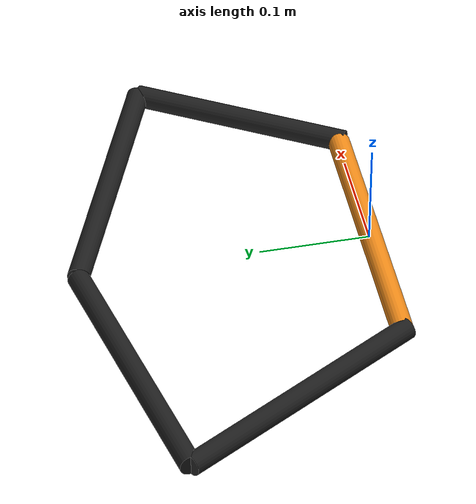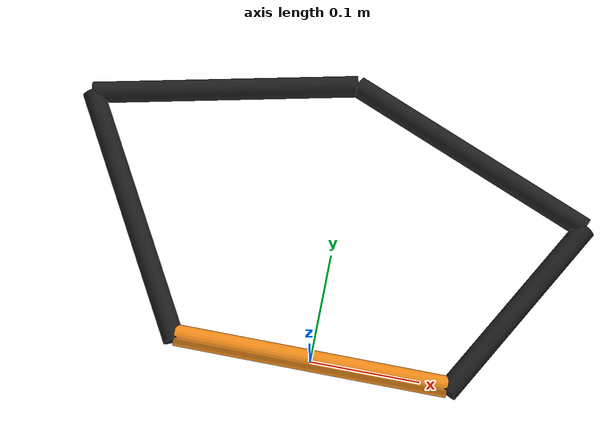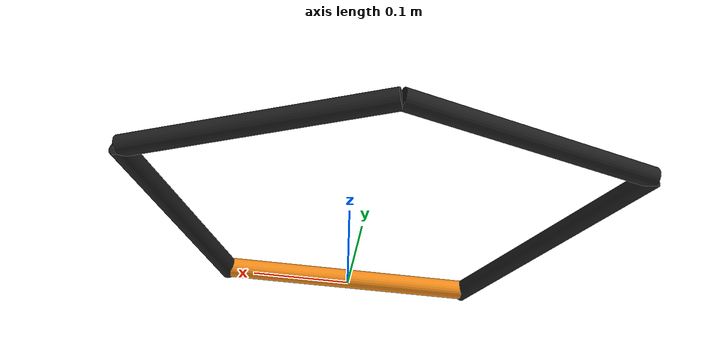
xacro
<?xml version="1.0"?>
<!-- Revolute-Revolute Manipulator -->
<robot name="fiver" xmlns:xacro="http://www.ros.org/wiki/xacro">

  <!-- Constants for robot dimensions -->
  <xacro:property name="PI" value="3.1415926535897931"/>
  <xacro:property name="mass" value="0.1" /> <!-- arbitrary value for mass -->

  <xacro:property name="height1" value="2" /> <!-- Link 1 -->
  <xacro:property name="height2" value="1" /> <!-- Link 2 -->
  <xacro:property name="height3" value="1" /> <!-- Link 2 -->
  <xacro:property name="camera_link" value="0.05" /> <!-- Size of square 'camera' box -->
  <xacro:property name="axel_offset" value="0.05" /> <!-- Space btw top of beam and the each joint -->
  <xacro:property name="width" value="0.01"/> <!-- Square dimensions (widthxwidth) of beams -->
  <xacro:property name="link1" value="0.250"/> <!-- Link 1 -->
  <xacro:property name="link2" value="0.250"/> <!-- Link 2 -->
  <xacro:property name="link3" value="0.250"/> <!-- Link 3 -->
  <xacro:property name="link4" value="0.250"/> <!-- Link 4 -->
  <xacro:property name="link5" value="0.200"/> <!-- Link 5 -->

  <!-- Import all Gazebo-customization elements, including Gazebo colors -->
  <xacro:include filename="$(find fiver_description)/urdf/fiver.gazebo" />
  <!-- Import Rviz colors -->
  <xacro:include filename="$(find fiver_description)/urdf/materials.xacro" />

  <!-- Base Link -->
  <link name="link1">
    <collision>
      <origin xyz="0 0 ${width/2}" rpy="0 ${PI/2} 0"/>
      <geometry>
      <cylinder radius="${width}" length="${link1}"/>
      </geometry>
    </collision>

    <visual>
      <origin xyz="0 0 ${width/2}" rpy="0 ${PI/2} 0"/>
      <geometry>
      <cylinder radius="${width}" length="${link1}"/>
      </geometry>
      <material name="orange"/>
    </visual>

    <inertial>
      <origin xyz="0 0 ${width/2}" rpy="0 ${PI/2} 0"/>
      <mass value="10"/>
      <inertia
	  ixx="1.15" ixy="0.0" ixz="0.0"
	  iyy="1.15" iyz="0.0"
	  izz="1.15"/>
    </inertial>
  </link>

  <joint name="joint1" type="continuous">
    <parent link="link1"/>
    <child link="link2"/>
    <origin xyz="${-link1/2} ${-width/2} 0" rpy="0 0 ${PI/6}"/>
    <axis xyz="0 0 1"/>
    <dynamics damping="0.7"/>
  </joint>

  <!-- Middle Link -->
  <link name="link2">
    <collision>
      <origin xyz="0 ${link2/2}  ${width/2}" rpy="${PI/2} 0 0"/>
      <geometry>
      <cylinder radius="${width}" length="${link2}"/>
      </geometry>
      </collision>

    <visual>
       <origin xyz="0 ${link2/2}  ${width/2}" rpy="${PI/2} 0 0"/>
      <geometry>
      <cylinder radius="${width}" length="${link2}"/>
      </geometry>
      <material name="black"/>
    </visual>

    <inertial>
       <origin xyz="0 ${link2/2}  ${width/2}" rpy="${PI/2} 0 0"/>
      <mass value="${mass}"/>
      <inertia
	  ixx="0.15" ixy="0.0" ixz="0.0"
	  iyy="0.15" iyz="0.0"
	  izz="0.15"/>
    </inertial>
  </link>

  <joint name="joint2" type="continuous">
    <parent link="link2"/>
    <child link="link3"/>
    <origin xyz="0 ${link2} 0" rpy="0 0 ${- 2*PI/3 + 0.21378335585905084}"/>
    <axis xyz="0 0 1"/>
    <dynamics damping="0.7"/>
  </joint>

  <!-- Middle Link -->
  <link name="link3">
    <collision>
      <origin xyz="0 ${link3/2}  ${width/2}" rpy="${PI/2} 0 0"/>
      <geometry>
      <cylinder radius="${width}" length="${link3}"/>
      </geometry>
      </collision>

    <visual>
       <origin xyz="0 ${link3/2}  ${width/2}" rpy="${PI/2} 0 0"/>
      <geometry>
      <cylinder radius="${width}" length="${link3}"/>
      </geometry>
      <material name="black"/>
    </visual>

    <inertial>
       <origin xyz="0 ${link3/2}  ${width/2}" rpy="${PI/2} 0 0"/>
      <mass value="${mass}"/>
      <inertia
	  ixx="0.15" ixy="0.0" ixz="0.0"
	  iyy="0.15" iyz="0.0"
	  izz="0.15"/>
    </inertial>
  </link>

 <joint name="joint5" type="continuous">
    <parent link="link1"/>
    <child link="link5"/>
    <origin xyz="${link1/2} ${-width/2} 0" rpy="0 0 ${-PI/6}"/>
    <axis xyz="0 0 1"/>
    <dynamics damping="0.7"/>
  </joint>

  <!-- Middle Link -->
  <link name="link5">
    <collision>
      <origin xyz="0 ${link5/2}  ${width/2}" rpy="${PI/2} 0 0"/>
      <geometry>
      <cylinder radius="${width}" length="${link5}"/>
      </geometry>
      </collision>

    <visual>
       <origin xyz="0 ${link5/2}  ${width/2}" rpy="${PI/2} 0 0"/>
      <geometry>
      <cylinder radius="${width}" length="${link5}"/>
      </geometry>
      <material name="black"/>
    </visual>

    <inertial>
       <origin xyz="0 ${link5/2}  ${width/2}" rpy="${PI/2} 0 0"/>
      <mass value="${mass}"/>
      <inertia
	  ixx="0.15" ixy="0.0" ixz="0.0"
	  iyy="0.15" iyz="0.0"
	  izz="0.15"/>
    </inertial>
  </link>

 <joint name="joint4" type="continuous">
    <parent link="link5"/>
    <child link="link4"/>
    <origin xyz="0 ${link5} 0" rpy="0 0 ${+2.745990701418049-PI/3}"/>
    <axis xyz="0 0 1"/>
    <dynamics damping="0.7"/>
  </joint>

  <!-- Middle Link -->
  <link name="link4">
    <collision>
      <origin xyz="0 ${link4/2}  ${width/2}" rpy="${PI/2} 0 0"/>
      <geometry>
      <cylinder radius="${width}" length="${link4}"/>
      </geometry>
      </collision>

    <visual>
       <origin xyz="0 ${link4/2}  ${width/2}" rpy="${PI/2} 0 0"/>
      <geometry>
      <cylinder radius="${width}" length="${link4}"/>
      </geometry>
      <material name="black"/>
    </visual>

    <inertial>
       <origin xyz="0 ${link4/2}  ${width/2}" rpy="${PI/2} 0 0"/>
      <mass value="${mass}"/>
      <inertia
	  ixx="0.15" ixy="0.0" ixz="0.0"
	  iyy="0.15" iyz="0.0"
	  izz="0.15"/>
    </inertial>
  </link>

<gazebo>
  <joint name="link3_link4" type="revolute">
    <parent>link3</parent>
    <child>link4</child>
    <pose>-0.005691190257475942 ${0.2695460104679354-2*width} ${width/2} 0 0 0</pose>
    <axis>
      <xyz>0 0 1</xyz>
      <limit>
        <lower>-6.2</lower>
        <upper>6.2</upper>
      </limit>
    </axis>
  </joint>
</gazebo>

<transmission name="tran1">
    <type>transmission_interface/SimpleTransmission</type>
    <joint name="joint1">
      <hardwareInterface>hardware_interface/EffortJointInterface</hardwareInterface>
    </joint>
    <actuator name="motor1">
      <hardwareInterface>hardware_interface/EffortJointInterface</hardwareInterface>
      <mechanicalReduction>1</mechanicalReduction>
    </actuator>
  </transmission>

  <transmission name="tran5">
    <type>transmission_interface/SimpleTransmission</type>
    <joint name="joint5">
      <hardwareInterface>hardware_interface/EffortJointInterface</hardwareInterface>
    </joint>
    <actuator name="motor5">
      <hardwareInterface>hardware_interface/EffortJointInterface</hardwareInterface>
      <mechanicalReduction>1</mechanicalReduction>
    </actuator>
  </transmission>

  <transmission name="tran2">
    <type>transmission_interface/SimpleTransmission</type>
    <joint name="joint2">
      <hardwareInterface>hardware_interface/PassiveJointInterface</hardwareInterface>
    </joint>
    <actuator name="motor2">
      <hardwareInterface>hardware_interface/PassiveJointInterface</hardwareInterface>
      <mechanicalReduction>1</mechanicalReduction>
    </actuator>
  </transmission>

  <transmission name="tran4">
    <type>transmission_interface/SimpleTransmission</type>
    <joint name="joint4">
      <hardwareInterface>hardware_interface/PassiveJointInterface</hardwareInterface>
    </joint>
    <actuator name="motor4">
      <hardwareInterface>hardware_interface/PassiveJointInterface</hardwareInterface>
      <mechanicalReduction>1</mechanicalReduction>
    </actuator>
  </transmission>

</robot>
